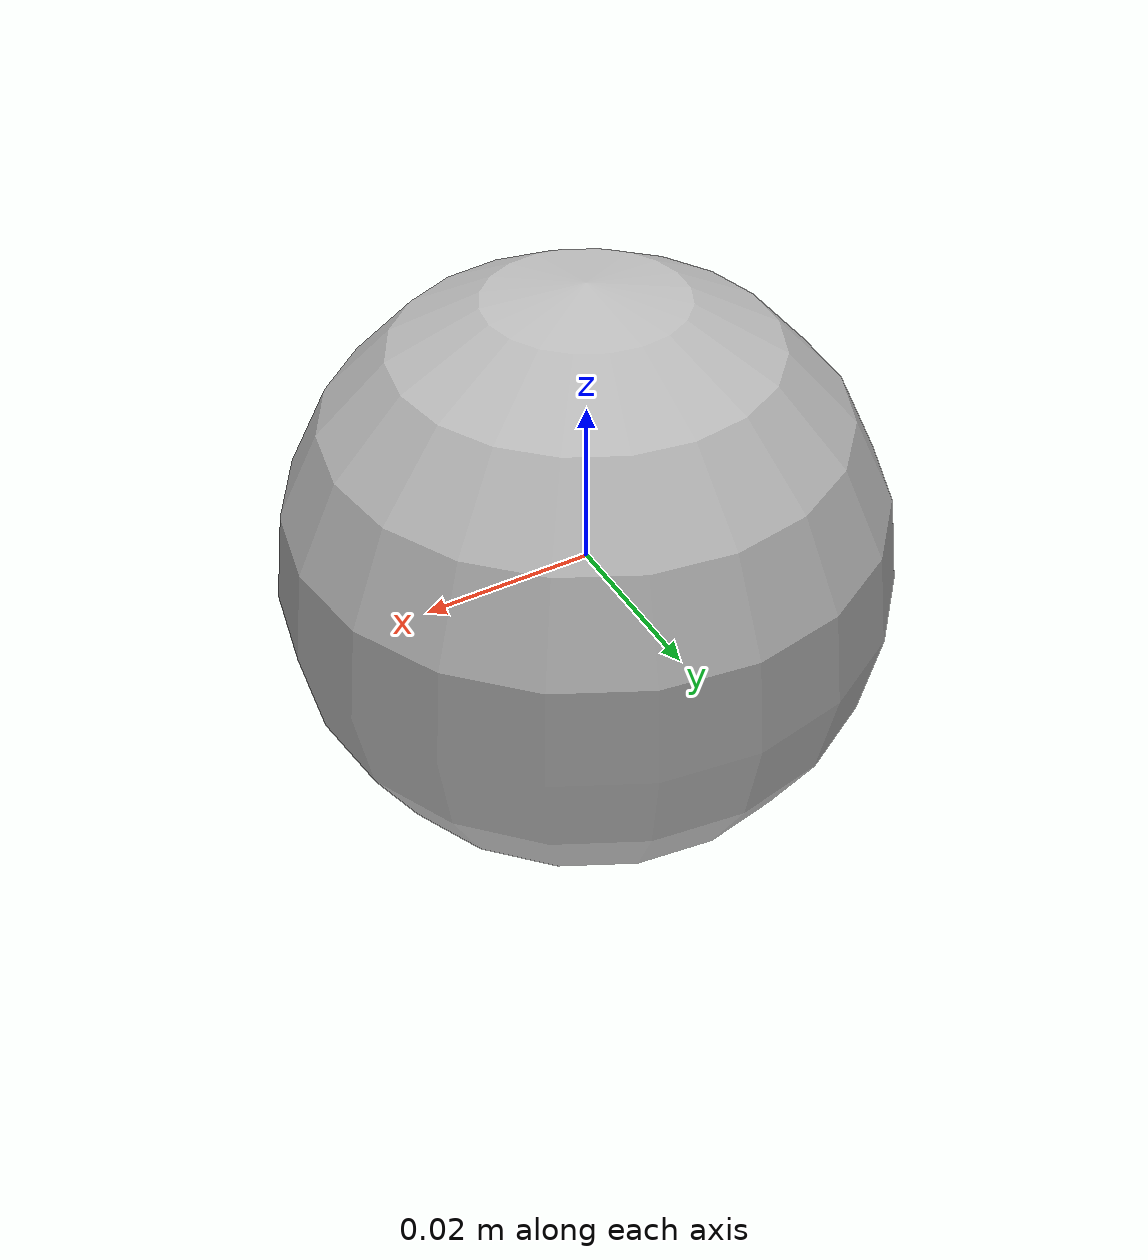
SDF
<?xml version="1.0"?>
<!-- GENERATED by src/soft_arm/generate_sdf.py from src/soft_arm/params.py.
     Do not edit by hand: regenerate, and a test asserts byte-equality. -->
<sdf version="1.9">
  <model name="soft12">

    <link name="base"><inertial><mass>0.0303030303</mass><inertia><ixx>1.48484848e-05</ixx><ixy>0</ixy><ixz>0</ixz><iyy>1.48484848e-05</iyy><iyz>0</iyz><izz>1.48484848e-05</izz></inertia></inertial></link>

    <!-- segment 0 -->
    <link name="seg0_sub0">
      <inertial><mass>0.0303030303</mass><inertia><ixx>1.48484848e-05</ixx><ixy>0</ixy><ixz>0</ixz><iyy>1.48484848e-05</iyy><iyz>0</iyz><izz>1.48484848e-05</izz></inertia></inertial>
      <collision name="seg0_sub0_collision"><geometry>
        <sphere><radius>0.035</radius></sphere>
      </geometry></collision>
      <visual name="seg0_sub0_visual"><geometry>
        <sphere><radius>0.035</radius></sphere>
      </geometry></visual>
    </link>
    <link name="seg0_sub1">
      <inertial><mass>0.0303030303</mass><inertia><ixx>1.48484848e-05</ixx><ixy>0</ixy><ixz>0</ixz><iyy>1.48484848e-05</iyy><iyz>0</iyz><izz>1.48484848e-05</izz></inertia></inertial>
      <collision name="seg0_sub1_collision"><geometry>
        <sphere><radius>0.035</radius></sphere>
      </geometry></collision>
      <visual name="seg0_sub1_visual"><geometry>
        <sphere><radius>0.035</radius></sphere>
      </geometry></visual>
    </link>
    <link name="seg0_sub2">
      <inertial><mass>0.0303030303</mass><inertia><ixx>1.48484848e-05</ixx><ixy>0</ixy><ixz>0</ixz><iyy>1.48484848e-05</iyy><iyz>0</iyz><izz>1.48484848e-05</izz></inertia></inertial>
      <collision name="seg0_sub2_collision"><geometry>
        <sphere><radius>0.035</radius></sphere>
      </geometry></collision>
      <visual name="seg0_sub2_visual"><geometry>
        <sphere><radius>0.035</radius></sphere>
      </geometry></visual>
    </link>
    <link name="seg0_sub3">
      <inertial><mass>0.0303030303</mass><inertia><ixx>1.48484848e-05</ixx><ixy>0</ixy><ixz>0</ixz><iyy>1.48484848e-05</iyy><iyz>0</iyz><izz>1.48484848e-05</izz></inertia></inertial>
      <collision name="seg0_sub3_collision"><geometry>
        <sphere><radius>0.035</radius></sphere>
      </geometry></collision>
      <visual name="seg0_sub3_visual"><geometry>
        <sphere><radius>0.035</radius></sphere>
      </geometry></visual>
    </link>
    <link name="seg0_sub4">
      <inertial><mass>0.0303030303</mass><inertia><ixx>1.48484848e-05</ixx><ixy>0</ixy><ixz>0</ixz><iyy>1.48484848e-05</iyy><iyz>0</iyz><izz>1.48484848e-05</izz></inertia></inertial>
      <collision name="seg0_sub4_collision"><geometry>
        <sphere><radius>0.035</radius></sphere>
      </geometry></collision>
      <visual name="seg0_sub4_visual"><geometry>
        <sphere><radius>0.035</radius></sphere>
      </geometry></visual>
    </link>
    <link name="seg0_sub5">
      <inertial><mass>0.0303030303</mass><inertia><ixx>1.48484848e-05</ixx><ixy>0</ixy><ixz>0</ixz><iyy>1.48484848e-05</iyy><iyz>0</iyz><izz>1.48484848e-05</izz></inertia></inertial>
      <collision name="seg0_sub5_collision"><geometry>
        <sphere><radius>0.035</radius></sphere>
      </geometry></collision>
      <visual name="seg0_sub5_visual"><geometry>
        <sphere><radius>0.035</radius></sphere>
      </geometry></visual>
    </link>
    <link name="seg0_sub6">
      <inertial><mass>0.0303030303</mass><inertia><ixx>1.48484848e-05</ixx><ixy>0</ixy><ixz>0</ixz><iyy>1.48484848e-05</iyy><iyz>0</iyz><izz>1.48484848e-05</izz></inertia></inertial>
      <collision name="seg0_sub6_collision"><geometry>
        <sphere><radius>0.035</radius></sphere>
      </geometry></collision>
      <visual name="seg0_sub6_visual"><geometry>
        <sphere><radius>0.035</radius></sphere>
      </geometry></visual>
    </link>
    <link name="seg0_sub7">
      <inertial><mass>0.0303030303</mass><inertia><ixx>1.48484848e-05</ixx><ixy>0</ixy><ixz>0</ixz><iyy>1.48484848e-05</iyy><iyz>0</iyz><izz>1.48484848e-05</izz></inertia></inertial>
      <collision name="seg0_sub7_collision"><geometry>
        <sphere><radius>0.035</radius></sphere>
      </geometry></collision>
      <visual name="seg0_sub7_visual"><geometry>
        <sphere><radius>0.035</radius></sphere>
      </geometry></visual>
    </link>

    <!-- segment 1 -->
    <link name="seg1_sub0">
      <inertial><mass>0.0303030303</mass><inertia><ixx>1.48484848e-05</ixx><ixy>0</ixy><ixz>0</ixz><iyy>1.48484848e-05</iyy><iyz>0</iyz><izz>1.48484848e-05</izz></inertia></inertial>
      <collision name="seg1_sub0_collision"><geometry>
        <sphere><radius>0.035</radius></sphere>
      </geometry></collision>
      <visual name="seg1_sub0_visual"><geometry>
        <sphere><radius>0.035</radius></sphere>
      </geometry></visual>
    </link>
    <link name="seg1_sub1">
      <inertial><mass>0.0303030303</mass><inertia><ixx>1.48484848e-05</ixx><ixy>0</ixy><ixz>0</ixz><iyy>1.48484848e-05</iyy><iyz>0</iyz><izz>1.48484848e-05</izz></inertia></inertial>
      <collision name="seg1_sub1_collision"><geometry>
        <sphere><radius>0.035</radius></sphere>
      </geometry></collision>
      <visual name="seg1_sub1_visual"><geometry>
        <sphere><radius>0.035</radius></sphere>
      </geometry></visual>
    </link>
    <link name="seg1_sub2">
      <inertial><mass>0.0303030303</mass><inertia><ixx>1.48484848e-05</ixx><ixy>0</ixy><ixz>0</ixz><iyy>1.48484848e-05</iyy><iyz>0</iyz><izz>1.48484848e-05</izz></inertia></inertial>
      <collision name="seg1_sub2_collision"><geometry>
        <sphere><radius>0.035</radius></sphere>
      </geometry></collision>
      <visual name="seg1_sub2_visual"><geometry>
        <sphere><radius>0.035</radius></sphere>
      </geometry></visual>
    </link>
    <link name="seg1_sub3">
      <inertial><mass>0.0303030303</mass><inertia><ixx>1.48484848e-05</ixx><ixy>0</ixy><ixz>0</ixz><iyy>1.48484848e-05</iyy><iyz>0</iyz><izz>1.48484848e-05</izz></inertia></inertial>
      <collision name="seg1_sub3_collision"><geometry>
        <sphere><radius>0.035</radius></sphere>
      </geometry></collision>
      <visual name="seg1_sub3_visual"><geometry>
        <sphere><radius>0.035</radius></sphere>
      </geometry></visual>
    </link>
    <link name="seg1_sub4">
      <inertial><mass>0.0303030303</mass><inertia><ixx>1.48484848e-05</ixx><ixy>0</ixy><ixz>0</ixz><iyy>1.48484848e-05</iyy><iyz>0</iyz><izz>1.48484848e-05</izz></inertia></inertial>
      <collision name="seg1_sub4_collision"><geometry>
        <sphere><radius>0.035</radius></sphere>
      </geometry></collision>
      <visual name="seg1_sub4_visual"><geometry>
        <sphere><radius>0.035</radius></sphere>
      </geometry></visual>
    </link>
    <link name="seg1_sub5">
      <inertial><mass>0.0303030303</mass><inertia><ixx>1.48484848e-05</ixx><ixy>0</ixy><ixz>0</ixz><iyy>1.48484848e-05</iyy><iyz>0</iyz><izz>1.48484848e-05</izz></inertia></inertial>
      <collision name="seg1_sub5_collision"><geometry>
        <sphere><radius>0.035</radius></sphere>
      </geometry></collision>
      <visual name="seg1_sub5_visual"><geometry>
        <sphere><radius>0.035</radius></sphere>
      </geometry></visual>
    </link>
    <link name="seg1_sub6">
      <inertial><mass>0.0303030303</mass><inertia><ixx>1.48484848e-05</ixx><ixy>0</ixy><ixz>0</ixz><iyy>1.48484848e-05</iyy><iyz>0</iyz><izz>1.48484848e-05</izz></inertia></inertial>
      <collision name="seg1_sub6_collision"><geometry>
        <sphere><radius>0.035</radius></sphere>
      </geometry></collision>
      <visual name="seg1_sub6_visual"><geometry>
        <sphere><radius>0.035</radius></sphere>
      </geometry></visual>
    </link>
    <link name="seg1_sub7">
      <inertial><mass>0.0303030303</mass><inertia><ixx>1.48484848e-05</ixx><ixy>0</ixy><ixz>0</ixz><iyy>1.48484848e-05</iyy><iyz>0</iyz><izz>1.48484848e-05</izz></inertia></inertial>
      <collision name="seg1_sub7_collision"><geometry>
        <sphere><radius>0.035</radius></sphere>
      </geometry></collision>
      <visual name="seg1_sub7_visual"><geometry>
        <sphere><radius>0.035</radius></sphere>
      </geometry></visual>
    </link>

    <!-- segment 2 -->
    <link name="seg2_sub0">
      <inertial><mass>0.0303030303</mass><inertia><ixx>1.48484848e-05</ixx><ixy>0</ixy><ixz>0</ixz><iyy>1.48484848e-05</iyy><iyz>0</iyz><izz>1.48484848e-05</izz></inertia></inertial>
      <collision name="seg2_sub0_collision"><geometry>
        <sphere><radius>0.035</radius></sphere>
      </geometry></collision>
      <visual name="seg2_sub0_visual"><geometry>
        <sphere><radius>0.035</radius></sphere>
      </geometry></visual>
    </link>
    <link name="seg2_sub1">
      <inertial><mass>0.0303030303</mass><inertia><ixx>1.48484848e-05</ixx><ixy>0</ixy><ixz>0</ixz><iyy>1.48484848e-05</iyy><iyz>0</iyz><izz>1.48484848e-05</izz></inertia></inertial>
      <collision name="seg2_sub1_collision"><geometry>
        <sphere><radius>0.035</radius></sphere>
      </geometry></collision>
      <visual name="seg2_sub1_visual"><geometry>
        <sphere><radius>0.035</radius></sphere>
      </geometry></visual>
    </link>
    <link name="seg2_sub2">
      <inertial><mass>0.0303030303</mass><inertia><ixx>1.48484848e-05</ixx><ixy>0</ixy><ixz>0</ixz><iyy>1.48484848e-05</iyy><iyz>0</iyz><izz>1.48484848e-05</izz></inertia></inertial>
      <collision name="seg2_sub2_collision"><geometry>
        <sphere><radius>0.035</radius></sphere>
      </geometry></collision>
      <visual name="seg2_sub2_visual"><geometry>
        <sphere><radius>0.035</radius></sphere>
      </geometry></visual>
    </link>
    <link name="seg2_sub3">
      <inertial><mass>0.0303030303</mass><inertia><ixx>1.48484848e-05</ixx><ixy>0</ixy><ixz>0</ixz><iyy>1.48484848e-05</iyy><iyz>0</iyz><izz>1.48484848e-05</izz></inertia></inertial>
      <collision name="seg2_sub3_collision"><geometry>
        <sphere><radius>0.035</radius></sphere>
      </geometry></collision>
      <visual name="seg2_sub3_visual"><geometry>
        <sphere><radius>0.035</radius></sphere>
      </geometry></visual>
    </link>
    <link name="seg2_sub4">
      <inertial><mass>0.0303030303</mass><inertia><ixx>1.48484848e-05</ixx><ixy>0</ixy><ixz>0</ixz><iyy>1.48484848e-05</iyy><iyz>0</iyz><izz>1.48484848e-05</izz></inertia></inertial>
      <collision name="seg2_sub4_collision"><geometry>
        <sphere><radius>0.035</radius></sphere>
      </geometry></collision>
      <visual name="seg2_sub4_visual"><geometry>
        <sphere><radius>0.035</radius></sphere>
      </geometry></visual>
    </link>
    <link name="seg2_sub5">
      <inertial><mass>0.0303030303</mass><inertia><ixx>1.48484848e-05</ixx><ixy>0</ixy><ixz>0</ixz><iyy>1.48484848e-05</iyy><iyz>0</iyz><izz>1.48484848e-05</izz></inertia></inertial>
      <collision name="seg2_sub5_collision"><geometry>
        <sphere><radius>0.035</radius></sphere>
      </geometry></collision>
      <visual name="seg2_sub5_visual"><geometry>
        <sphere><radius>0.035</radius></sphere>
      </geometry></visual>
    </link>
    <link name="seg2_sub6">
      <inertial><mass>0.0303030303</mass><inertia><ixx>1.48484848e-05</ixx><ixy>0</ixy><ixz>0</ixz><iyy>1.48484848e-05</iyy><iyz>0</iyz><izz>1.48484848e-05</izz></inertia></inertial>
      <collision name="seg2_sub6_collision"><geometry>
        <sphere><radius>0.035</radius></sphere>
      </geometry></collision>
      <visual name="seg2_sub6_visual"><geometry>
        <sphere><radius>0.035</radius></sphere>
      </geometry></visual>
    </link>
    <link name="seg2_sub7">
      <inertial><mass>0.0303030303</mass><inertia><ixx>1.48484848e-05</ixx><ixy>0</ixy><ixz>0</ixz><iyy>1.48484848e-05</iyy><iyz>0</iyz><izz>1.48484848e-05</izz></inertia></inertial>
      <collision name="seg2_sub7_collision"><geometry>
        <sphere><radius>0.035</radius></sphere>
      </geometry></collision>
      <visual name="seg2_sub7_visual"><geometry>
        <sphere><radius>0.035</radius></sphere>
      </geometry></visual>
    </link>

    <!-- segment 3 -->
    <link name="seg3_sub0">
      <inertial><mass>0.0303030303</mass><inertia><ixx>1.48484848e-05</ixx><ixy>0</ixy><ixz>0</ixz><iyy>1.48484848e-05</iyy><iyz>0</iyz><izz>1.48484848e-05</izz></inertia></inertial>
      <collision name="seg3_sub0_collision"><geometry>
        <sphere><radius>0.035</radius></sphere>
      </geometry></collision>
      <visual name="seg3_sub0_visual"><geometry>
        <sphere><radius>0.035</radius></sphere>
      </geometry></visual>
    </link>
    <link name="seg3_sub1">
      <inertial><mass>0.0303030303</mass><inertia><ixx>1.48484848e-05</ixx><ixy>0</ixy><ixz>0</ixz><iyy>1.48484848e-05</iyy><iyz>0</iyz><izz>1.48484848e-05</izz></inertia></inertial>
      <collision name="seg3_sub1_collision"><geometry>
        <sphere><radius>0.035</radius></sphere>
      </geometry></collision>
      <visual name="seg3_sub1_visual"><geometry>
        <sphere><radius>0.035</radius></sphere>
      </geometry></visual>
    </link>
    <link name="seg3_sub2">
      <inertial><mass>0.0303030303</mass><inertia><ixx>1.48484848e-05</ixx><ixy>0</ixy><ixz>0</ixz><iyy>1.48484848e-05</iyy><iyz>0</iyz><izz>1.48484848e-05</izz></inertia></inertial>
      <collision name="seg3_sub2_collision"><geometry>
        <sphere><radius>0.035</radius></sphere>
      </geometry></collision>
      <visual name="seg3_sub2_visual"><geometry>
        <sphere><radius>0.035</radius></sphere>
      </geometry></visual>
    </link>
    <link name="seg3_sub3">
      <inertial><mass>0.0303030303</mass><inertia><ixx>1.48484848e-05</ixx><ixy>0</ixy><ixz>0</ixz><iyy>1.48484848e-05</iyy><iyz>0</iyz><izz>1.48484848e-05</izz></inertia></inertial>
      <collision name="seg3_sub3_collision"><geometry>
        <sphere><radius>0.035</radius></sphere>
      </geometry></collision>
      <visual name="seg3_sub3_visual"><geometry>
        <sphere><radius>0.035</radius></sphere>
      </geometry></visual>
    </link>
    <link name="seg3_sub4">
      <inertial><mass>0.0303030303</mass><inertia><ixx>1.48484848e-05</ixx><ixy>0</ixy><ixz>0</ixz><iyy>1.48484848e-05</iyy><iyz>0</iyz><izz>1.48484848e-05</izz></inertia></inertial>
      <collision name="seg3_sub4_collision"><geometry>
        <sphere><radius>0.035</radius></sphere>
      </geometry></collision>
      <visual name="seg3_sub4_visual"><geometry>
        <sphere><radius>0.035</radius></sphere>
      </geometry></visual>
    </link>
    <link name="seg3_sub5">
      <inertial><mass>0.0303030303</mass><inertia><ixx>1.48484848e-05</ixx><ixy>0</ixy><ixz>0</ixz><iyy>1.48484848e-05</iyy><iyz>0</iyz><izz>1.48484848e-05</izz></inertia></inertial>
      <collision name="seg3_sub5_collision"><geometry>
        <sphere><radius>0.035</radius></sphere>
      </geometry></collision>
      <visual name="seg3_sub5_visual"><geometry>
        <sphere><radius>0.035</radius></sphere>
      </geometry></visual>
    </link>
    <link name="seg3_sub6">
      <inertial><mass>0.0303030303</mass><inertia><ixx>1.48484848e-05</ixx><ixy>0</ixy><ixz>0</ixz><iyy>1.48484848e-05</iyy><iyz>0</iyz><izz>1.48484848e-05</izz></inertia></inertial>
      <collision name="seg3_sub6_collision"><geometry>
        <sphere><radius>0.035</radius></sphere>
      </geometry></collision>
      <visual name="seg3_sub6_visual"><geometry>
        <sphere><radius>0.035</radius></sphere>
      </geometry></visual>
    </link>
    <link name="seg3_sub7">
      <inertial><mass>0.0303030303</mass><inertia><ixx>1.48484848e-05</ixx><ixy>0</ixy><ixz>0</ixz><iyy>1.48484848e-05</iyy><iyz>0</iyz><izz>1.48484848e-05</izz></inertia></inertial>
      <collision name="seg3_sub7_collision"><geometry>
        <sphere><radius>0.035</radius></sphere>
      </geometry></collision>
      <visual name="seg3_sub7_visual"><geometry>
        <sphere><radius>0.035</radius></sphere>
      </geometry></visual>
    </link>

    <link name="soft_tip_link">
      <inertial><mass>0.0303030303</mass><inertia><ixx>1.48484848e-05</ixx><ixy>0</ixy><ixz>0</ixz><iyy>1.48484848e-05</iyy><iyz>0</iyz><izz>1.48484848e-05</izz></inertia></inertial>
      <collision name="soft_tip_link_collision"><geometry>
        <sphere><radius>0.035</radius></sphere>
      </geometry></collision>
      <visual name="soft_tip_link_visual"><geometry>
        <sphere><radius>0.035</radius></sphere>
      </geometry></visual>
    </link>
    <frame name="soft_tip" attached_to="soft_tip_link"/>

    <drake:collision_filter_group name="seg0"><drake:member>seg0_sub0</drake:member><drake:member>seg0_sub1</drake:member><drake:member>seg0_sub2</drake:member><drake:member>seg0_sub3</drake:member><drake:member>seg0_sub4</drake:member><drake:member>seg0_sub5</drake:member><drake:member>seg0_sub6</drake:member><drake:member>seg0_sub7</drake:member><drake:ignored_collision_filter_group>seg0</drake:ignored_collision_filter_group><drake:ignored_collision_filter_group>seg1</drake:ignored_collision_filter_group></drake:collision_filter_group>
    <drake:collision_filter_group name="seg1"><drake:member>seg1_sub0</drake:member><drake:member>seg1_sub1</drake:member><drake:member>seg1_sub2</drake:member><drake:member>seg1_sub3</drake:member><drake:member>seg1_sub4</drake:member><drake:member>seg1_sub5</drake:member><drake:member>seg1_sub6</drake:member><drake:member>seg1_sub7</drake:member><drake:ignored_collision_filter_group>seg1</drake:ignored_collision_filter_group><drake:ignored_collision_filter_group>seg2</drake:ignored_collision_filter_group></drake:collision_filter_group>
    <drake:collision_filter_group name="seg2"><drake:member>seg2_sub0</drake:member><drake:member>seg2_sub1</drake:member><drake:member>seg2_sub2</drake:member><drake:member>seg2_sub3</drake:member><drake:member>seg2_sub4</drake:member><drake:member>seg2_sub5</drake:member><drake:member>seg2_sub6</drake:member><drake:member>seg2_sub7</drake:member><drake:ignored_collision_filter_group>seg2</drake:ignored_collision_filter_group><drake:ignored_collision_filter_group>seg3</drake:ignored_collision_filter_group></drake:collision_filter_group>
    <drake:collision_filter_group name="seg3"><drake:member>seg3_sub0</drake:member><drake:member>seg3_sub1</drake:member><drake:member>seg3_sub2</drake:member><drake:member>seg3_sub3</drake:member><drake:member>seg3_sub4</drake:member><drake:member>seg3_sub5</drake:member><drake:member>seg3_sub6</drake:member><drake:member>seg3_sub7</drake:member><drake:member>soft_tip_link</drake:member><drake:ignored_collision_filter_group>seg3</drake:ignored_collision_filter_group></drake:collision_filter_group>
  </model>
</sdf>
